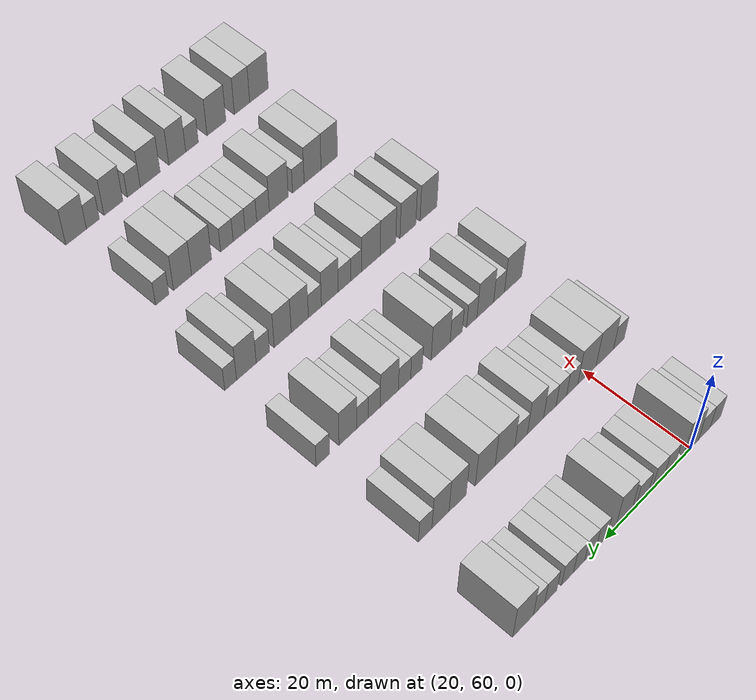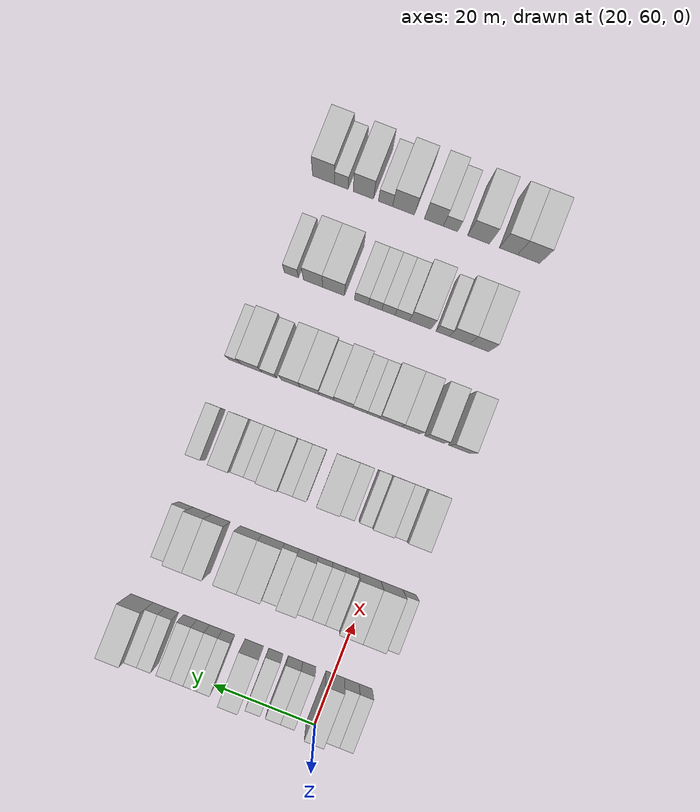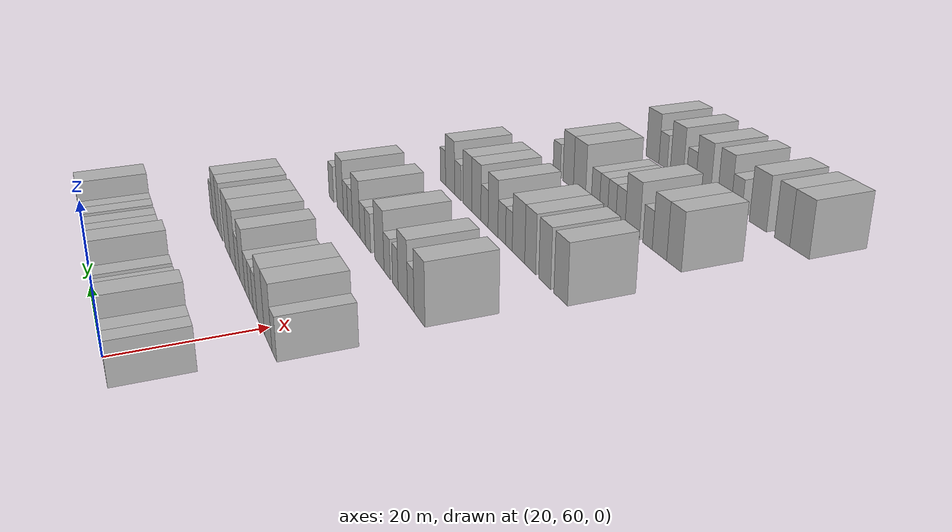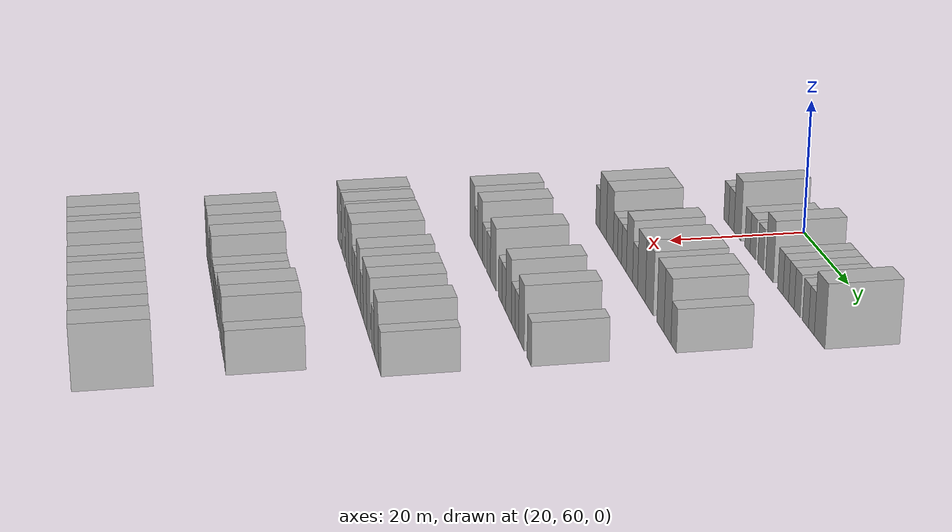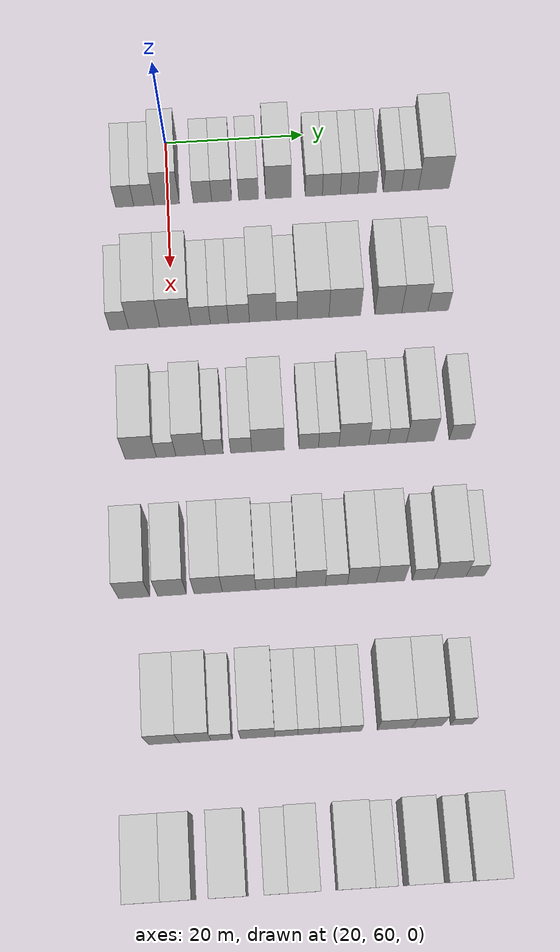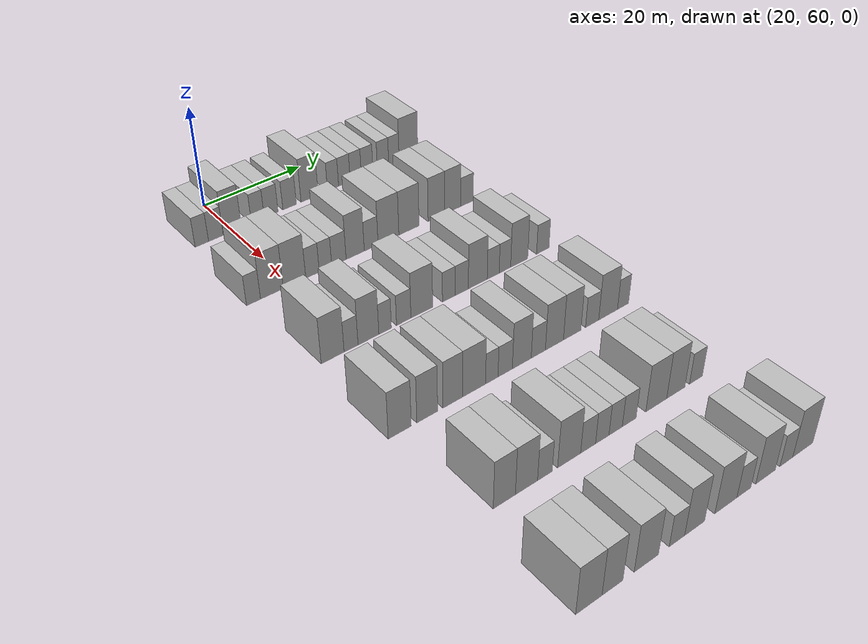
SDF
<sdf version="1.6">
 <world name="default">
  <model name="building_103">
   <static>1</static>
   <pose>25.0000 53.8488 0 0.000000 0.000000 0.000000</pose>
   <link name="link">
    <pose>0 0 3.00 0 0 0</pose>
    <collision name="collision"><geometry><box><size>10.0000 2.6082 6.0000</size></box></geometry></collision>
    <visual name="visual">
     <cast_shadows>0</cast_shadows>
     <geometry><box><size>10.0000 2.6082 6.0000</size></box></geometry>
     <material>
      <script>
       <uri>model://HANNAS_wall/materials/scripts</uri>
       <uri>model://HANNAS_wall/materials/textures</uri>
       <name>vrc/HANNAS_wall</name>
      </script>
     </material>
    </visual>
   </link>
  </model>
  <model name="building_104">
   <static>1</static>
   <pose>25.0000 56.5940 0 0.000000 0.000000 0.000000</pose>
   <link name="link">
    <pose>0 0 3.00 0 0 0</pose>
    <collision name="collision"><geometry><box><size>10.0000 2.8821 6.0000</size></box></geometry></collision>
    <visual name="visual">
     <cast_shadows>0</cast_shadows>
     <geometry><box><size>10.0000 2.8821 6.0000</size></box></geometry>
     <material>
      <script>
       <uri>model://HANNAS_wall/materials/scripts</uri>
       <uri>model://HANNAS_wall/materials/textures</uri>
       <name>vrc/HANNAS_wall</name>
      </script>
     </material>
    </visual>
   </link>
  </model>
  <model name="building_105">
   <static>1</static>
   <pose>25.0000 59.8552 0 0.000000 0.000000 0.000000</pose>
   <link name="link">
    <pose>0 0 4.50 0 0 0</pose>
    <collision name="collision"><geometry><box><size>10.0000 3.6404 9.0000</size></box></geometry></collision>
    <visual name="visual">
     <cast_shadows>0</cast_shadows>
     <geometry><box><size>10.0000 3.6404 9.0000</size></box></geometry>
     <material>
      <script>
       <uri>model://HANNAS_wall/materials/scripts</uri>
       <uri>model://HANNAS_wall/materials/textures</uri>
       <name>vrc/HANNAS_wall</name>
      </script>
     </material>
    </visual>
   </link>
  </model>
  <model name="building_106">
   <static>1</static>
   <pose>25.0000 64.9903 0 0.000000 0.000000 0.000000</pose>
   <link name="link">
    <pose>0 0 3.00 0 0 0</pose>
    <collision name="collision"><geometry><box><size>10.0000 2.6298 6.0000</size></box></geometry></collision>
    <visual name="visual">
     <cast_shadows>0</cast_shadows>
     <geometry><box><size>10.0000 2.6298 6.0000</size></box></geometry>
     <material>
      <script>
       <uri>model://HANNAS_wall/materials/scripts</uri>
       <uri>model://HANNAS_wall/materials/textures</uri>
       <name>vrc/HANNAS_wall</name>
      </script>
     </material>
    </visual>
   </link>
  </model>
  <model name="building_107">
   <static>1</static>
   <pose>25.0000 67.7396 0 0.000000 0.000000 0.000000</pose>
   <link name="link">
    <pose>0 0 3.00 0 0 0</pose>
    <collision name="collision"><geometry><box><size>10.0000 2.8688 6.0000</size></box></geometry></collision>
    <visual name="visual">
     <cast_shadows>0</cast_shadows>
     <geometry><box><size>10.0000 2.8688 6.0000</size></box></geometry>
     <material>
      <script>
       <uri>model://HANNAS_wall/materials/scripts</uri>
       <uri>model://HANNAS_wall/materials/textures</uri>
       <name>vrc/HANNAS_wall</name>
      </script>
     </material>
    </visual>
   </link>
  </model>
  <model name="building_108">
   <static>1</static>
   <pose>25.0000 71.5971 0 0.000000 0.000000 0.000000</pose>
   <link name="link">
    <pose>0 0 3.00 0 0 0</pose>
    <collision name="collision"><geometry><box><size>10.0000 2.8461 6.0000</size></box></geometry></collision>
    <visual name="visual">
     <cast_shadows>0</cast_shadows>
     <geometry><box><size>10.0000 2.8461 6.0000</size></box></geometry>
     <material>
      <script>
       <uri>model://HANNAS_wall/materials/scripts</uri>
       <uri>model://HANNAS_wall/materials/textures</uri>
       <name>vrc/HANNAS_wall</name>
      </script>
     </material>
    </visual>
   </link>
  </model>
  <model name="building_109">
   <static>1</static>
   <pose>25.0000 75.8723 0 0.000000 0.000000 0.000000</pose>
   <link name="link">
    <pose>0 0 4.50 0 0 0</pose>
    <collision name="collision"><geometry><box><size>10.0000 3.7042 9.0000</size></box></geometry></collision>
    <visual name="visual">
     <cast_shadows>0</cast_shadows>
     <geometry><box><size>10.0000 3.7042 9.0000</size></box></geometry>
     <material>
      <script>
       <uri>model://HANNAS_wall/materials/scripts</uri>
       <uri>model://HANNAS_wall/materials/textures</uri>
       <name>vrc/HANNAS_wall</name>
      </script>
     </material>
    </visual>
   </link>
  </model>
  <model name="building_110">
   <static>1</static>
   <pose>25.0000 80.9524 0 0.000000 0.000000 0.000000</pose>
   <link name="link">
    <pose>0 0 3.00 0 0 0</pose>
    <collision name="collision"><geometry><box><size>10.0000 2.4559 6.0000</size></box></geometry></collision>
    <visual name="visual">
     <cast_shadows>0</cast_shadows>
     <geometry><box><size>10.0000 2.4559 6.0000</size></box></geometry>
     <material>
      <script>
       <uri>model://HANNAS_wall/materials/scripts</uri>
       <uri>model://HANNAS_wall/materials/textures</uri>
       <name>vrc/HANNAS_wall</name>
      </script>
     </material>
    </visual>
   </link>
  </model>
  <model name="building_111">
   <static>1</static>
   <pose>25.0000 83.4660 0 0.000000 0.000000 0.000000</pose>
   <link name="link">
    <pose>0 0 3.00 0 0 0</pose>
    <collision name="collision"><geometry><box><size>10.0000 2.5713 6.0000</size></box></geometry></collision>
    <visual name="visual">
     <cast_shadows>0</cast_shadows>
     <geometry><box><size>10.0000 2.5713 6.0000</size></box></geometry>
     <material>
      <script>
       <uri>model://HANNAS_wall/materials/scripts</uri>
       <uri>model://HANNAS_wall/materials/textures</uri>
       <name>vrc/HANNAS_wall</name>
      </script>
     </material>
    </visual>
   </link>
  </model>
  <model name="building_112">
   <static>1</static>
   <pose>25.0000 86.0088 0 0.000000 0.000000 0.000000</pose>
   <link name="link">
    <pose>0 0 3.00 0 0 0</pose>
    <collision name="collision"><geometry><box><size>10.0000 2.5143 6.0000</size></box></geometry></collision>
    <visual name="visual">
     <cast_shadows>0</cast_shadows>
     <geometry><box><size>10.0000 2.5143 6.0000</size></box></geometry>
     <material>
      <script>
       <uri>model://HANNAS_wall/materials/scripts</uri>
       <uri>model://HANNAS_wall/materials/textures</uri>
       <name>vrc/HANNAS_wall</name>
      </script>
     </material>
    </visual>
   </link>
  </model>
  <model name="building_113">
   <static>1</static>
   <pose>25.0000 88.5937 0 0.000000 0.000000 0.000000</pose>
   <link name="link">
    <pose>0 0 3.00 0 0 0</pose>
    <collision name="collision"><geometry><box><size>10.0000 2.6556 6.0000</size></box></geometry></collision>
    <visual name="visual">
     <cast_shadows>0</cast_shadows>
     <geometry><box><size>10.0000 2.6556 6.0000</size></box></geometry>
     <material>
      <script>
       <uri>model://HANNAS_wall/materials/scripts</uri>
       <uri>model://HANNAS_wall/materials/textures</uri>
       <name>vrc/HANNAS_wall</name>
      </script>
     </material>
    </visual>
   </link>
  </model>
  <model name="building_114">
   <static>1</static>
   <pose>25.0000 92.2387 0 0.000000 0.000000 0.000000</pose>
   <link name="link">
    <pose>0 0 3.00 0 0 0</pose>
    <collision name="collision"><geometry><box><size>10.0000 2.6344 6.0000</size></box></geometry></collision>
    <visual name="visual">
     <cast_shadows>0</cast_shadows>
     <geometry><box><size>10.0000 2.6344 6.0000</size></box></geometry>
     <material>
      <script>
       <uri>model://HANNAS_wall/materials/scripts</uri>
       <uri>model://HANNAS_wall/materials/textures</uri>
       <name>vrc/HANNAS_wall</name>
      </script>
     </material>
    </visual>
   </link>
  </model>
  <model name="building_115">
   <static>1</static>
   <pose>25.0000 94.7714 0 0.000000 0.000000 0.000000</pose>
   <link name="link">
    <pose>0 0 3.00 0 0 0</pose>
    <collision name="collision"><geometry><box><size>10.0000 2.4309 6.0000</size></box></geometry></collision>
    <visual name="visual">
     <cast_shadows>0</cast_shadows>
     <geometry><box><size>10.0000 2.4309 6.0000</size></box></geometry>
     <material>
      <script>
       <uri>model://HANNAS_wall/materials/scripts</uri>
       <uri>model://HANNAS_wall/materials/textures</uri>
       <name>vrc/HANNAS_wall</name>
      </script>
     </material>
    </visual>
   </link>
  </model>
  <model name="building_116">
   <static>1</static>
   <pose>25.0000 98.2021 0 0.000000 0.000000 0.000000</pose>
   <link name="link">
    <pose>0 0 4.50 0 0 0</pose>
    <collision name="collision"><geometry><box><size>10.0000 4.4305 9.0000</size></box></geometry></collision>
    <visual name="visual">
     <cast_shadows>0</cast_shadows>
     <geometry><box><size>10.0000 4.4305 9.0000</size></box></geometry>
     <material>
      <script>
       <uri>model://HANNAS_wall/materials/scripts</uri>
       <uri>model://HANNAS_wall/materials/textures</uri>
       <name>vrc/HANNAS_wall</name>
      </script>
     </material>
    </visual>
   </link>
  </model>
  <model name="building_269">
   <static>1</static>
   <pose>44.0000 52.5776 0 0.000000 0.000000 0.000000</pose>
   <link name="link">
    <pose>0 0 3.00 0 0 0</pose>
    <collision name="collision"><geometry><box><size>10.0000 2.6210 6.0000</size></box></geometry></collision>
    <visual name="visual">
     <cast_shadows>0</cast_shadows>
     <geometry><box><size>10.0000 2.6210 6.0000</size></box></geometry>
     <material>
      <script>
       <uri>model://HANNAS_wall/materials/scripts</uri>
       <uri>model://HANNAS_wall/materials/textures</uri>
       <name>vrc/HANNAS_wall</name>
      </script>
     </material>
    </visual>
   </link>
  </model>
  <model name="building_270">
   <static>1</static>
   <pose>44.0000 56.0456 0 0.000000 0.000000 0.000000</pose>
   <link name="link">
    <pose>0 0 4.50 0 0 0</pose>
    <collision name="collision"><geometry><box><size>10.0000 4.3150 9.0000</size></box></geometry></collision>
    <visual name="visual">
     <cast_shadows>0</cast_shadows>
     <geometry><box><size>10.0000 4.3150 9.0000</size></box></geometry>
     <material>
      <script>
       <uri>model://HANNAS_wall/materials/scripts</uri>
       <uri>model://HANNAS_wall/materials/textures</uri>
       <name>vrc/HANNAS_wall</name>
      </script>
     </material>
    </visual>
   </link>
  </model>
  <model name="building_271">
   <static>1</static>
   <pose>44.0000 60.3945 0 0.000000 0.000000 0.000000</pose>
   <link name="link">
    <pose>0 0 4.50 0 0 0</pose>
    <collision name="collision"><geometry><box><size>10.0000 4.3827 9.0000</size></box></geometry></collision>
    <visual name="visual">
     <cast_shadows>0</cast_shadows>
     <geometry><box><size>10.0000 4.3827 9.0000</size></box></geometry>
     <material>
      <script>
       <uri>model://HANNAS_wall/materials/scripts</uri>
       <uri>model://HANNAS_wall/materials/textures</uri>
       <name>vrc/HANNAS_wall</name>
      </script>
     </material>
    </visual>
   </link>
  </model>
  <model name="building_272">
   <static>1</static>
   <pose>44.0000 63.9227 0 0.000000 0.000000 0.000000</pose>
   <link name="link">
    <pose>0 0 3.00 0 0 0</pose>
    <collision name="collision"><geometry><box><size>10.0000 2.6737 6.0000</size></box></geometry></collision>
    <visual name="visual">
     <cast_shadows>0</cast_shadows>
     <geometry><box><size>10.0000 2.6737 6.0000</size></box></geometry>
     <material>
      <script>
       <uri>model://HANNAS_wall/materials/scripts</uri>
       <uri>model://HANNAS_wall/materials/textures</uri>
       <name>vrc/HANNAS_wall</name>
      </script>
     </material>
    </visual>
   </link>
  </model>
  <model name="building_273">
   <static>1</static>
   <pose>44.0000 66.5073 0 0.000000 0.000000 0.000000</pose>
   <link name="link">
    <pose>0 0 3.00 0 0 0</pose>
    <collision name="collision"><geometry><box><size>10.0000 2.4953 6.0000</size></box></geometry></collision>
    <visual name="visual">
     <cast_shadows>0</cast_shadows>
     <geometry><box><size>10.0000 2.4953 6.0000</size></box></geometry>
     <material>
      <script>
       <uri>model://HANNAS_wall/materials/scripts</uri>
       <uri>model://HANNAS_wall/materials/textures</uri>
       <name>vrc/HANNAS_wall</name>
      </script>
     </material>
    </visual>
   </link>
  </model>
  <model name="building_274">
   <static>1</static>
   <pose>44.0000 69.2160 0 0.000000 0.000000 0.000000</pose>
   <link name="link">
    <pose>0 0 3.00 0 0 0</pose>
    <collision name="collision"><geometry><box><size>10.0000 2.9222 6.0000</size></box></geometry></collision>
    <visual name="visual">
     <cast_shadows>0</cast_shadows>
     <geometry><box><size>10.0000 2.9222 6.0000</size></box></geometry>
     <material>
      <script>
       <uri>model://HANNAS_wall/materials/scripts</uri>
       <uri>model://HANNAS_wall/materials/textures</uri>
       <name>vrc/HANNAS_wall</name>
      </script>
     </material>
    </visual>
   </link>
  </model>
  <model name="building_275">
   <static>1</static>
   <pose>44.0000 72.5506 0 0.000000 0.000000 0.000000</pose>
   <link name="link">
    <pose>0 0 4.50 0 0 0</pose>
    <collision name="collision"><geometry><box><size>10.0000 3.7469 9.0000</size></box></geometry></collision>
    <visual name="visual">
     <cast_shadows>0</cast_shadows>
     <geometry><box><size>10.0000 3.7469 9.0000</size></box></geometry>
     <material>
      <script>
       <uri>model://HANNAS_wall/materials/scripts</uri>
       <uri>model://HANNAS_wall/materials/textures</uri>
       <name>vrc/HANNAS_wall</name>
      </script>
     </material>
    </visual>
   </link>
  </model>
  <model name="building_276">
   <static>1</static>
   <pose>44.0000 75.8721 0 0.000000 0.000000 0.000000</pose>
   <link name="link">
    <pose>0 0 3.00 0 0 0</pose>
    <collision name="collision"><geometry><box><size>10.0000 2.8960 6.0000</size></box></geometry></collision>
    <visual name="visual">
     <cast_shadows>0</cast_shadows>
     <geometry><box><size>10.0000 2.8960 6.0000</size></box></geometry>
     <material>
      <script>
       <uri>model://HANNAS_wall/materials/scripts</uri>
       <uri>model://HANNAS_wall/materials/textures</uri>
       <name>vrc/HANNAS_wall</name>
      </script>
     </material>
    </visual>
   </link>
  </model>
  <model name="building_277">
   <static>1</static>
   <pose>44.0000 79.5388 0 0.000000 0.000000 0.000000</pose>
   <link name="link">
    <pose>0 0 4.50 0 0 0</pose>
    <collision name="collision"><geometry><box><size>10.0000 4.4375 9.0000</size></box></geometry></collision>
    <visual name="visual">
     <cast_shadows>0</cast_shadows>
     <geometry><box><size>10.0000 4.4375 9.0000</size></box></geometry>
     <material>
      <script>
       <uri>model://HANNAS_wall/materials/scripts</uri>
       <uri>model://HANNAS_wall/materials/textures</uri>
       <name>vrc/HANNAS_wall</name>
      </script>
     </material>
    </visual>
   </link>
  </model>
  <model name="building_278">
   <static>1</static>
   <pose>44.0000 83.9598 0 0.000000 0.000000 0.000000</pose>
   <link name="link">
    <pose>0 0 4.50 0 0 0</pose>
    <collision name="collision"><geometry><box><size>10.0000 4.4044 9.0000</size></box></geometry></collision>
    <visual name="visual">
     <cast_shadows>0</cast_shadows>
     <geometry><box><size>10.0000 4.4044 9.0000</size></box></geometry>
     <material>
      <script>
       <uri>model://HANNAS_wall/materials/scripts</uri>
       <uri>model://HANNAS_wall/materials/textures</uri>
       <name>vrc/HANNAS_wall</name>
      </script>
     </material>
    </visual>
   </link>
  </model>
  <model name="building_279">
   <static>1</static>
   <pose>44.0000 90.0341 0 0.000000 0.000000 0.000000</pose>
   <link name="link">
    <pose>0 0 4.50 0 0 0</pose>
    <collision name="collision"><geometry><box><size>10.0000 3.7443 9.0000</size></box></geometry></collision>
    <visual name="visual">
     <cast_shadows>0</cast_shadows>
     <geometry><box><size>10.0000 3.7443 9.0000</size></box></geometry>
     <material>
      <script>
       <uri>model://HANNAS_wall/materials/scripts</uri>
       <uri>model://HANNAS_wall/materials/textures</uri>
       <name>vrc/HANNAS_wall</name>
      </script>
     </material>
    </visual>
   </link>
  </model>
  <model name="building_280">
   <static>1</static>
   <pose>44.0000 93.7412 0 0.000000 0.000000 0.000000</pose>
   <link name="link">
    <pose>0 0 4.50 0 0 0</pose>
    <collision name="collision"><geometry><box><size>10.0000 3.6699 9.0000</size></box></geometry></collision>
    <visual name="visual">
     <cast_shadows>0</cast_shadows>
     <geometry><box><size>10.0000 3.6699 9.0000</size></box></geometry>
     <material>
      <script>
       <uri>model://HANNAS_wall/materials/scripts</uri>
       <uri>model://HANNAS_wall/materials/textures</uri>
       <name>vrc/HANNAS_wall</name>
      </script>
     </material>
    </visual>
   </link>
  </model>
  <model name="building_281">
   <static>1</static>
   <pose>44.0000 97.0076 0 0.000000 0.000000 0.000000</pose>
   <link name="link">
    <pose>0 0 3.00 0 0 0</pose>
    <collision name="collision"><geometry><box><size>10.0000 2.8629 6.0000</size></box></geometry></collision>
    <visual name="visual">
     <cast_shadows>0</cast_shadows>
     <geometry><box><size>10.0000 2.8629 6.0000</size></box></geometry>
     <material>
      <script>
       <uri>model://HANNAS_wall/materials/scripts</uri>
       <uri>model://HANNAS_wall/materials/textures</uri>
       <name>vrc/HANNAS_wall</name>
      </script>
     </material>
    </visual>
   </link>
  </model>
  <model name="building_440">
   <static>1</static>
   <pose>63.0000 55.0257 0 0.000000 0.000000 0.000000</pose>
   <link name="link">
    <pose>0 0 4.50 0 0 0</pose>
    <collision name="collision"><geometry><box><size>10.0000 4.2123 9.0000</size></box></geometry></collision>
    <visual name="visual">
     <cast_shadows>0</cast_shadows>
     <geometry><box><size>10.0000 4.2123 9.0000</size></box></geometry>
     <material>
      <script>
       <uri>model://HANNAS_wall/materials/scripts</uri>
       <uri>model://HANNAS_wall/materials/textures</uri>
       <name>vrc/HANNAS_wall</name>
      </script>
     </material>
    </visual>
   </link>
  </model>
  <model name="building_441">
   <static>1</static>
   <pose>63.0000 58.4349 0 0.000000 0.000000 0.000000</pose>
   <link name="link">
    <pose>0 0 3.00 0 0 0</pose>
    <collision name="collision"><geometry><box><size>10.0000 2.6060 6.0000</size></box></geometry></collision>
    <visual name="visual">
     <cast_shadows>0</cast_shadows>
     <geometry><box><size>10.0000 2.6060 6.0000</size></box></geometry>
     <material>
      <script>
       <uri>model://HANNAS_wall/materials/scripts</uri>
       <uri>model://HANNAS_wall/materials/textures</uri>
       <name>vrc/HANNAS_wall</name>
      </script>
     </material>
    </visual>
   </link>
  </model>
  <model name="building_442">
   <static>1</static>
   <pose>63.0000 61.7177 0 0.000000 0.000000 0.000000</pose>
   <link name="link">
    <pose>0 0 4.50 0 0 0</pose>
    <collision name="collision"><geometry><box><size>10.0000 3.9595 9.0000</size></box></geometry></collision>
    <visual name="visual">
     <cast_shadows>0</cast_shadows>
     <geometry><box><size>10.0000 3.9595 9.0000</size></box></geometry>
     <material>
      <script>
       <uri>model://HANNAS_wall/materials/scripts</uri>
       <uri>model://HANNAS_wall/materials/textures</uri>
       <name>vrc/HANNAS_wall</name>
      </script>
     </material>
    </visual>
   </link>
  </model>
  <model name="building_443">
   <static>1</static>
   <pose>63.0000 64.9080 0 0.000000 0.000000 0.000000</pose>
   <link name="link">
    <pose>0 0 3.00 0 0 0</pose>
    <collision name="collision"><geometry><box><size>10.0000 2.4212 6.0000</size></box></geometry></collision>
    <visual name="visual">
     <cast_shadows>0</cast_shadows>
     <geometry><box><size>10.0000 2.4212 6.0000</size></box></geometry>
     <material>
      <script>
       <uri>model://HANNAS_wall/materials/scripts</uri>
       <uri>model://HANNAS_wall/materials/textures</uri>
       <name>vrc/HANNAS_wall</name>
      </script>
     </material>
    </visual>
   </link>
  </model>
  <model name="building_444">
   <static>1</static>
   <pose>63.0000 68.5434 0 0.000000 0.000000 0.000000</pose>
   <link name="link">
    <pose>0 0 3.00 0 0 0</pose>
    <collision name="collision"><geometry><box><size>10.0000 2.8496 6.0000</size></box></geometry></collision>
    <visual name="visual">
     <cast_shadows>0</cast_shadows>
     <geometry><box><size>10.0000 2.8496 6.0000</size></box></geometry>
     <material>
      <script>
       <uri>model://HANNAS_wall/materials/scripts</uri>
       <uri>model://HANNAS_wall/materials/textures</uri>
       <name>vrc/HANNAS_wall</name>
      </script>
     </material>
    </visual>
   </link>
  </model>
  <model name="building_445">
   <static>1</static>
   <pose>63.0000 72.1521 0 0.000000 0.000000 0.000000</pose>
   <link name="link">
    <pose>0 0 4.50 0 0 0</pose>
    <collision name="collision"><geometry><box><size>10.0000 4.3678 9.0000</size></box></geometry></collision>
    <visual name="visual">
     <cast_shadows>0</cast_shadows>
     <geometry><box><size>10.0000 4.3678 9.0000</size></box></geometry>
     <material>
      <script>
       <uri>model://HANNAS_wall/materials/scripts</uri>
       <uri>model://HANNAS_wall/materials/textures</uri>
       <name>vrc/HANNAS_wall</name>
      </script>
     </material>
    </visual>
   </link>
  </model>
  <model name="building_446">
   <static>1</static>
   <pose>63.0000 77.6573 0 0.000000 0.000000 0.000000</pose>
   <link name="link">
    <pose>0 0 3.00 0 0 0</pose>
    <collision name="collision"><geometry><box><size>10.0000 2.6425 6.0000</size></box></geometry></collision>
    <visual name="visual">
     <cast_shadows>0</cast_shadows>
     <geometry><box><size>10.0000 2.6425 6.0000</size></box></geometry>
     <material>
      <script>
       <uri>model://HANNAS_wall/materials/scripts</uri>
       <uri>model://HANNAS_wall/materials/textures</uri>
       <name>vrc/HANNAS_wall</name>
      </script>
     </material>
    </visual>
   </link>
  </model>
  <model name="building_447">
   <static>1</static>
   <pose>63.0000 80.3554 0 0.000000 0.000000 0.000000</pose>
   <link name="link">
    <pose>0 0 3.00 0 0 0</pose>
    <collision name="collision"><geometry><box><size>10.0000 2.7536 6.0000</size></box></geometry></collision>
    <visual name="visual">
     <cast_shadows>0</cast_shadows>
     <geometry><box><size>10.0000 2.7536 6.0000</size></box></geometry>
     <material>
      <script>
       <uri>model://HANNAS_wall/materials/scripts</uri>
       <uri>model://HANNAS_wall/materials/textures</uri>
       <name>vrc/HANNAS_wall</name>
      </script>
     </material>
    </visual>
   </link>
  </model>
  <model name="building_448">
   <static>1</static>
   <pose>63.0000 83.7452 0 0.000000 0.000000 0.000000</pose>
   <link name="link">
    <pose>0 0 4.50 0 0 0</pose>
    <collision name="collision"><geometry><box><size>10.0000 4.0261 9.0000</size></box></geometry></collision>
    <visual name="visual">
     <cast_shadows>0</cast_shadows>
     <geometry><box><size>10.0000 4.0261 9.0000</size></box></geometry>
     <material>
      <script>
       <uri>model://HANNAS_wall/materials/scripts</uri>
       <uri>model://HANNAS_wall/materials/textures</uri>
       <name>vrc/HANNAS_wall</name>
      </script>
     </material>
    </visual>
   </link>
  </model>
  <model name="building_449">
   <static>1</static>
   <pose>63.0000 87.0568 0 0.000000 0.000000 0.000000</pose>
   <link name="link">
    <pose>0 0 3.00 0 0 0</pose>
    <collision name="collision"><geometry><box><size>10.0000 2.5970 6.0000</size></box></geometry></collision>
    <visual name="visual">
     <cast_shadows>0</cast_shadows>
     <geometry><box><size>10.0000 2.5970 6.0000</size></box></geometry>
     <material>
      <script>
       <uri>model://HANNAS_wall/materials/scripts</uri>
       <uri>model://HANNAS_wall/materials/textures</uri>
       <name>vrc/HANNAS_wall</name>
      </script>
     </material>
    </visual>
   </link>
  </model>
  <model name="building_450">
   <static>1</static>
   <pose>63.0000 89.6159 0 0.000000 0.000000 0.000000</pose>
   <link name="link">
    <pose>0 0 3.00 0 0 0</pose>
    <collision name="collision"><geometry><box><size>10.0000 2.5211 6.0000</size></box></geometry></collision>
    <visual name="visual">
     <cast_shadows>0</cast_shadows>
     <geometry><box><size>10.0000 2.5211 6.0000</size></box></geometry>
     <material>
      <script>
       <uri>model://HANNAS_wall/materials/scripts</uri>
       <uri>model://HANNAS_wall/materials/textures</uri>
       <name>vrc/HANNAS_wall</name>
      </script>
     </material>
    </visual>
   </link>
  </model>
  <model name="building_451">
   <static>1</static>
   <pose>63.0000 92.7737 0 0.000000 0.000000 0.000000</pose>
   <link name="link">
    <pose>0 0 4.50 0 0 0</pose>
    <collision name="collision"><geometry><box><size>10.0000 3.7946 9.0000</size></box></geometry></collision>
    <visual name="visual">
     <cast_shadows>0</cast_shadows>
     <geometry><box><size>10.0000 3.7946 9.0000</size></box></geometry>
     <material>
      <script>
       <uri>model://HANNAS_wall/materials/scripts</uri>
       <uri>model://HANNAS_wall/materials/textures</uri>
       <name>vrc/HANNAS_wall</name>
      </script>
     </material>
    </visual>
   </link>
  </model>
  <model name="building_452">
   <static>1</static>
   <pose>63.0000 98.0937 0 0.000000 0.000000 0.000000</pose>
   <link name="link">
    <pose>0 0 3.00 0 0 0</pose>
    <collision name="collision"><geometry><box><size>10.0000 2.8454 6.0000</size></box></geometry></collision>
    <visual name="visual">
     <cast_shadows>0</cast_shadows>
     <geometry><box><size>10.0000 2.8454 6.0000</size></box></geometry>
     <material>
      <script>
       <uri>model://HANNAS_wall/materials/scripts</uri>
       <uri>model://HANNAS_wall/materials/textures</uri>
       <name>vrc/HANNAS_wall</name>
      </script>
     </material>
    </visual>
   </link>
  </model>
  <model name="building_617">
   <static>1</static>
   <pose>82.0000 53.5790 0 0.000000 0.000000 0.000000</pose>
   <link name="link">
    <pose>0 0 4.50 0 0 0</pose>
    <collision name="collision"><geometry><box><size>10.0000 4.0742 9.0000</size></box></geometry></collision>
    <visual name="visual">
     <cast_shadows>0</cast_shadows>
     <geometry><box><size>10.0000 4.0742 9.0000</size></box></geometry>
     <material>
      <script>
       <uri>model://HANNAS_wall/materials/scripts</uri>
       <uri>model://HANNAS_wall/materials/textures</uri>
       <name>vrc/HANNAS_wall</name>
      </script>
     </material>
    </visual>
   </link>
  </model>
  <model name="building_618">
   <static>1</static>
   <pose>82.0000 58.5087 0 0.000000 0.000000 0.000000</pose>
   <link name="link">
    <pose>0 0 4.50 0 0 0</pose>
    <collision name="collision"><geometry><box><size>10.0000 3.7851 9.0000</size></box></geometry></collision>
    <visual name="visual">
     <cast_shadows>0</cast_shadows>
     <geometry><box><size>10.0000 3.7851 9.0000</size></box></geometry>
     <material>
      <script>
       <uri>model://HANNAS_wall/materials/scripts</uri>
       <uri>model://HANNAS_wall/materials/textures</uri>
       <name>vrc/HANNAS_wall</name>
      </script>
     </material>
    </visual>
   </link>
  </model>
  <model name="building_619">
   <static>1</static>
   <pose>82.0000 63.2399 0 0.000000 0.000000 0.000000</pose>
   <link name="link">
    <pose>0 0 4.50 0 0 0</pose>
    <collision name="collision"><geometry><box><size>10.0000 3.6775 9.0000</size></box></geometry></collision>
    <visual name="visual">
     <cast_shadows>0</cast_shadows>
     <geometry><box><size>10.0000 3.6775 9.0000</size></box></geometry>
     <material>
      <script>
       <uri>model://HANNAS_wall/materials/scripts</uri>
       <uri>model://HANNAS_wall/materials/textures</uri>
       <name>vrc/HANNAS_wall</name>
      </script>
     </material>
    </visual>
   </link>
  </model>
  <model name="building_620">
   <static>1</static>
   <pose>82.0000 67.2622 0 0.000000 0.000000 0.000000</pose>
   <link name="link">
    <pose>0 0 4.50 0 0 0</pose>
    <collision name="collision"><geometry><box><size>10.0000 4.3670 9.0000</size></box></geometry></collision>
    <visual name="visual">
     <cast_shadows>0</cast_shadows>
     <geometry><box><size>10.0000 4.3670 9.0000</size></box></geometry>
     <material>
      <script>
       <uri>model://HANNAS_wall/materials/scripts</uri>
       <uri>model://HANNAS_wall/materials/textures</uri>
       <name>vrc/HANNAS_wall</name>
      </script>
     </material>
    </visual>
   </link>
  </model>
  <model name="building_621">
   <static>1</static>
   <pose>82.0000 70.6679 0 0.000000 0.000000 0.000000</pose>
   <link name="link">
    <pose>0 0 3.00 0 0 0</pose>
    <collision name="collision"><geometry><box><size>10.0000 2.4444 6.0000</size></box></geometry></collision>
    <visual name="visual">
     <cast_shadows>0</cast_shadows>
     <geometry><box><size>10.0000 2.4444 6.0000</size></box></geometry>
     <material>
      <script>
       <uri>model://HANNAS_wall/materials/scripts</uri>
       <uri>model://HANNAS_wall/materials/textures</uri>
       <name>vrc/HANNAS_wall</name>
      </script>
     </material>
    </visual>
   </link>
  </model>
  <model name="building_622">
   <static>1</static>
   <pose>82.0000 73.3102 0 0.000000 0.000000 0.000000</pose>
   <link name="link">
    <pose>0 0 3.00 0 0 0</pose>
    <collision name="collision"><geometry><box><size>10.0000 2.8403 6.0000</size></box></geometry></collision>
    <visual name="visual">
     <cast_shadows>0</cast_shadows>
     <geometry><box><size>10.0000 2.8403 6.0000</size></box></geometry>
     <material>
      <script>
       <uri>model://HANNAS_wall/materials/scripts</uri>
       <uri>model://HANNAS_wall/materials/textures</uri>
       <name>vrc/HANNAS_wall</name>
      </script>
     </material>
    </visual>
   </link>
  </model>
  <model name="building_623">
   <static>1</static>
   <pose>82.0000 76.6312 0 0.000000 0.000000 0.000000</pose>
   <link name="link">
    <pose>0 0 4.50 0 0 0</pose>
    <collision name="collision"><geometry><box><size>10.0000 3.8017 9.0000</size></box></geometry></collision>
    <visual name="visual">
     <cast_shadows>0</cast_shadows>
     <geometry><box><size>10.0000 3.8017 9.0000</size></box></geometry>
     <material>
      <script>
       <uri>model://HANNAS_wall/materials/scripts</uri>
       <uri>model://HANNAS_wall/materials/textures</uri>
       <name>vrc/HANNAS_wall</name>
      </script>
     </material>
    </visual>
   </link>
  </model>
  <model name="building_624">
   <static>1</static>
   <pose>82.0000 79.9833 0 0.000000 0.000000 0.000000</pose>
   <link name="link">
    <pose>0 0 3.00 0 0 0</pose>
    <collision name="collision"><geometry><box><size>10.0000 2.9024 6.0000</size></box></geometry></collision>
    <visual name="visual">
     <cast_shadows>0</cast_shadows>
     <geometry><box><size>10.0000 2.9024 6.0000</size></box></geometry>
     <material>
      <script>
       <uri>model://HANNAS_wall/materials/scripts</uri>
       <uri>model://HANNAS_wall/materials/textures</uri>
       <name>vrc/HANNAS_wall</name>
      </script>
     </material>
    </visual>
   </link>
  </model>
  <model name="building_625">
   <static>1</static>
   <pose>82.0000 83.3240 0 0.000000 0.000000 0.000000</pose>
   <link name="link">
    <pose>0 0 4.50 0 0 0</pose>
    <collision name="collision"><geometry><box><size>10.0000 3.7791 9.0000</size></box></geometry></collision>
    <visual name="visual">
     <cast_shadows>0</cast_shadows>
     <geometry><box><size>10.0000 3.7791 9.0000</size></box></geometry>
     <material>
      <script>
       <uri>model://HANNAS_wall/materials/scripts</uri>
       <uri>model://HANNAS_wall/materials/textures</uri>
       <name>vrc/HANNAS_wall</name>
      </script>
     </material>
    </visual>
   </link>
  </model>
  <model name="building_626">
   <static>1</static>
   <pose>82.0000 87.0717 0 0.000000 0.000000 0.000000</pose>
   <link name="link">
    <pose>0 0 4.50 0 0 0</pose>
    <collision name="collision"><geometry><box><size>10.0000 3.7163 9.0000</size></box></geometry></collision>
    <visual name="visual">
     <cast_shadows>0</cast_shadows>
     <geometry><box><size>10.0000 3.7163 9.0000</size></box></geometry>
     <material>
      <script>
       <uri>model://HANNAS_wall/materials/scripts</uri>
       <uri>model://HANNAS_wall/materials/textures</uri>
       <name>vrc/HANNAS_wall</name>
      </script>
     </material>
    </visual>
   </link>
  </model>
  <model name="building_627">
   <static>1</static>
   <pose>82.0000 91.3712 0 0.000000 0.000000 0.000000</pose>
   <link name="link">
    <pose>0 0 3.00 0 0 0</pose>
    <collision name="collision"><geometry><box><size>10.0000 2.8827 6.0000</size></box></geometry></collision>
    <visual name="visual">
     <cast_shadows>0</cast_shadows>
     <geometry><box><size>10.0000 2.8827 6.0000</size></box></geometry>
     <material>
      <script>
       <uri>model://HANNAS_wall/materials/scripts</uri>
       <uri>model://HANNAS_wall/materials/textures</uri>
       <name>vrc/HANNAS_wall</name>
      </script>
     </material>
    </visual>
   </link>
  </model>
  <model name="building_628">
   <static>1</static>
   <pose>82.0000 94.8962 0 0.000000 0.000000 0.000000</pose>
   <link name="link">
    <pose>0 0 4.50 0 0 0</pose>
    <collision name="collision"><geometry><box><size>10.0000 4.1673 9.0000</size></box></geometry></collision>
    <visual name="visual">
     <cast_shadows>0</cast_shadows>
     <geometry><box><size>10.0000 4.1673 9.0000</size></box></geometry>
     <material>
      <script>
       <uri>model://HANNAS_wall/materials/scripts</uri>
       <uri>model://HANNAS_wall/materials/textures</uri>
       <name>vrc/HANNAS_wall</name>
      </script>
     </material>
    </visual>
   </link>
  </model>
  <model name="building_629">
   <static>1</static>
   <pose>82.0000 98.2232 0 0.000000 0.000000 0.000000</pose>
   <link name="link">
    <pose>0 0 3.00 0 0 0</pose>
    <collision name="collision"><geometry><box><size>10.0000 2.4867 6.0000</size></box></geometry></collision>
    <visual name="visual">
     <cast_shadows>0</cast_shadows>
     <geometry><box><size>10.0000 2.4867 6.0000</size></box></geometry>
     <material>
      <script>
       <uri>model://HANNAS_wall/materials/scripts</uri>
       <uri>model://HANNAS_wall/materials/textures</uri>
       <name>vrc/HANNAS_wall</name>
      </script>
     </material>
    </visual>
   </link>
  </model>
  <model name="building_792">
   <static>1</static>
   <pose>101.0000 56.8065 0 0.000000 0.000000 0.000000</pose>
   <link name="link">
    <pose>0 0 4.50 0 0 0</pose>
    <collision name="collision"><geometry><box><size>10.0000 3.9000 9.0000</size></box></geometry></collision>
    <visual name="visual">
     <cast_shadows>0</cast_shadows>
     <geometry><box><size>10.0000 3.9000 9.0000</size></box></geometry>
     <material>
      <script>
       <uri>model://HANNAS_wall/materials/scripts</uri>
       <uri>model://HANNAS_wall/materials/textures</uri>
       <name>vrc/HANNAS_wall</name>
      </script>
     </material>
    </visual>
   </link>
  </model>
  <model name="building_793">
   <static>1</static>
   <pose>101.0000 60.7530 0 0.000000 0.000000 0.000000</pose>
   <link name="link">
    <pose>0 0 4.50 0 0 0</pose>
    <collision name="collision"><geometry><box><size>10.0000 3.9930 9.0000</size></box></geometry></collision>
    <visual name="visual">
     <cast_shadows>0</cast_shadows>
     <geometry><box><size>10.0000 3.9930 9.0000</size></box></geometry>
     <material>
      <script>
       <uri>model://HANNAS_wall/materials/scripts</uri>
       <uri>model://HANNAS_wall/materials/textures</uri>
       <name>vrc/HANNAS_wall</name>
      </script>
     </material>
    </visual>
   </link>
  </model>
  <model name="building_794">
   <static>1</static>
   <pose>101.0000 64.1003 0 0.000000 0.000000 0.000000</pose>
   <link name="link">
    <pose>0 0 3.00 0 0 0</pose>
    <collision name="collision"><geometry><box><size>10.0000 2.7016 6.0000</size></box></geometry></collision>
    <visual name="visual">
     <cast_shadows>0</cast_shadows>
     <geometry><box><size>10.0000 2.7016 6.0000</size></box></geometry>
     <material>
      <script>
       <uri>model://HANNAS_wall/materials/scripts</uri>
       <uri>model://HANNAS_wall/materials/textures</uri>
       <name>vrc/HANNAS_wall</name>
      </script>
     </material>
    </visual>
   </link>
  </model>
  <model name="building_795">
   <static>1</static>
   <pose>101.0000 68.6294 0 0.000000 0.000000 0.000000</pose>
   <link name="link">
    <pose>0 0 4.50 0 0 0</pose>
    <collision name="collision"><geometry><box><size>10.0000 4.3567 9.0000</size></box></geometry></collision>
    <visual name="visual">
     <cast_shadows>0</cast_shadows>
     <geometry><box><size>10.0000 4.3567 9.0000</size></box></geometry>
     <material>
      <script>
       <uri>model://HANNAS_wall/materials/scripts</uri>
       <uri>model://HANNAS_wall/materials/textures</uri>
       <name>vrc/HANNAS_wall</name>
      </script>
     </material>
    </visual>
   </link>
  </model>
  <model name="building_796">
   <static>1</static>
   <pose>101.0000 72.2483 0 0.000000 0.000000 0.000000</pose>
   <link name="link">
    <pose>0 0 3.00 0 0 0</pose>
    <collision name="collision"><geometry><box><size>10.0000 2.8810 6.0000</size></box></geometry></collision>
    <visual name="visual">
     <cast_shadows>0</cast_shadows>
     <geometry><box><size>10.0000 2.8810 6.0000</size></box></geometry>
     <material>
      <script>
       <uri>model://HANNAS_wall/materials/scripts</uri>
       <uri>model://HANNAS_wall/materials/textures</uri>
       <name>vrc/HANNAS_wall</name>
      </script>
     </material>
    </visual>
   </link>
  </model>
  <model name="building_797">
   <static>1</static>
   <pose>101.0000 75.0071 0 0.000000 0.000000 0.000000</pose>
   <link name="link">
    <pose>0 0 3.00 0 0 0</pose>
    <collision name="collision"><geometry><box><size>10.0000 2.6368 6.0000</size></box></geometry></collision>
    <visual name="visual">
     <cast_shadows>0</cast_shadows>
     <geometry><box><size>10.0000 2.6368 6.0000</size></box></geometry>
     <material>
      <script>
       <uri>model://HANNAS_wall/materials/scripts</uri>
       <uri>model://HANNAS_wall/materials/textures</uri>
       <name>vrc/HANNAS_wall</name>
      </script>
     </material>
    </visual>
   </link>
  </model>
  <model name="building_798">
   <static>1</static>
   <pose>101.0000 77.6536 0 0.000000 0.000000 0.000000</pose>
   <link name="link">
    <pose>0 0 3.00 0 0 0</pose>
    <collision name="collision"><geometry><box><size>10.0000 2.6562 6.0000</size></box></geometry></collision>
    <visual name="visual">
     <cast_shadows>0</cast_shadows>
     <geometry><box><size>10.0000 2.6562 6.0000</size></box></geometry>
     <material>
      <script>
       <uri>model://HANNAS_wall/materials/scripts</uri>
       <uri>model://HANNAS_wall/materials/textures</uri>
       <name>vrc/HANNAS_wall</name>
      </script>
     </material>
    </visual>
   </link>
  </model>
  <model name="building_799">
   <static>1</static>
   <pose>101.0000 80.3815 0 0.000000 0.000000 0.000000</pose>
   <link name="link">
    <pose>0 0 3.00 0 0 0</pose>
    <collision name="collision"><geometry><box><size>10.0000 2.7995 6.0000</size></box></geometry></collision>
    <visual name="visual">
     <cast_shadows>0</cast_shadows>
     <geometry><box><size>10.0000 2.7995 6.0000</size></box></geometry>
     <material>
      <script>
       <uri>model://HANNAS_wall/materials/scripts</uri>
       <uri>model://HANNAS_wall/materials/textures</uri>
       <name>vrc/HANNAS_wall</name>
      </script>
     </material>
    </visual>
   </link>
  </model>
  <model name="building_800">
   <static>1</static>
   <pose>101.0000 85.9625 0 0.000000 0.000000 0.000000</pose>
   <link name="link">
    <pose>0 0 4.50 0 0 0</pose>
    <collision name="collision"><geometry><box><size>10.0000 4.3625 9.0000</size></box></geometry></collision>
    <visual name="visual">
     <cast_shadows>0</cast_shadows>
     <geometry><box><size>10.0000 4.3625 9.0000</size></box></geometry>
     <material>
      <script>
       <uri>model://HANNAS_wall/materials/scripts</uri>
       <uri>model://HANNAS_wall/materials/textures</uri>
       <name>vrc/HANNAS_wall</name>
      </script>
     </material>
    </visual>
   </link>
  </model>
  <model name="building_801">
   <static>1</static>
   <pose>101.0000 90.0918 0 0.000000 0.000000 0.000000</pose>
   <link name="link">
    <pose>0 0 4.50 0 0 0</pose>
    <collision name="collision"><geometry><box><size>10.0000 3.8961 9.0000</size></box></geometry></collision>
    <visual name="visual">
     <cast_shadows>0</cast_shadows>
     <geometry><box><size>10.0000 3.8961 9.0000</size></box></geometry>
     <material>
      <script>
       <uri>model://HANNAS_wall/materials/scripts</uri>
       <uri>model://HANNAS_wall/materials/textures</uri>
       <name>vrc/HANNAS_wall</name>
      </script>
     </material>
    </visual>
   </link>
  </model>
  <model name="building_802">
   <static>1</static>
   <pose>101.0000 94.4532 0 0.000000 0.000000 0.000000</pose>
   <link name="link">
    <pose>0 0 3.00 0 0 0</pose>
    <collision name="collision"><geometry><box><size>10.0000 2.8269 6.0000</size></box></geometry></collision>
    <visual name="visual">
     <cast_shadows>0</cast_shadows>
     <geometry><box><size>10.0000 2.8269 6.0000</size></box></geometry>
     <material>
      <script>
       <uri>model://HANNAS_wall/materials/scripts</uri>
       <uri>model://HANNAS_wall/materials/textures</uri>
       <name>vrc/HANNAS_wall</name>
      </script>
     </material>
    </visual>
   </link>
  </model>
  <model name="building_971">
   <static>1</static>
   <pose>120.0000 54.1416 0 0.000000 0.000000 0.000000</pose>
   <link name="link">
    <pose>0 0 4.50 0 0 0</pose>
    <collision name="collision"><geometry><box><size>10.0000 4.4744 9.0000</size></box></geometry></collision>
    <visual name="visual">
     <cast_shadows>0</cast_shadows>
     <geometry><box><size>10.0000 4.4744 9.0000</size></box></geometry>
     <material>
      <script>
       <uri>model://HANNAS_wall/materials/scripts</uri>
       <uri>model://HANNAS_wall/materials/textures</uri>
       <name>vrc/HANNAS_wall</name>
      </script>
     </material>
    </visual>
   </link>
  </model>
  <model name="building_972">
   <static>1</static>
   <pose>120.0000 58.1968 0 0.000000 0.000000 0.000000</pose>
   <link name="link">
    <pose>0 0 4.50 0 0 0</pose>
    <collision name="collision"><geometry><box><size>10.0000 3.6361 9.0000</size></box></geometry></collision>
    <visual name="visual">
     <cast_shadows>0</cast_shadows>
     <geometry><box><size>10.0000 3.6361 9.0000</size></box></geometry>
     <material>
      <script>
       <uri>model://HANNAS_wall/materials/scripts</uri>
       <uri>model://HANNAS_wall/materials/textures</uri>
       <name>vrc/HANNAS_wall</name>
      </script>
     </material>
    </visual>
   </link>
  </model>
  <model name="building_973">
   <static>1</static>
   <pose>120.0000 64.2128 0 0.000000 0.000000 0.000000</pose>
   <link name="link">
    <pose>0 0 4.50 0 0 0</pose>
    <collision name="collision"><geometry><box><size>10.0000 4.3959 9.0000</size></box></geometry></collision>
    <visual name="visual">
     <cast_shadows>0</cast_shadows>
     <geometry><box><size>10.0000 4.3959 9.0000</size></box></geometry>
     <material>
      <script>
       <uri>model://HANNAS_wall/materials/scripts</uri>
       <uri>model://HANNAS_wall/materials/textures</uri>
       <name>vrc/HANNAS_wall</name>
      </script>
     </material>
    </visual>
   </link>
  </model>
  <model name="building_974">
   <static>1</static>
   <pose>120.0000 69.8590 0 0.000000 0.000000 0.000000</pose>
   <link name="link">
    <pose>0 0 3.00 0 0 0</pose>
    <collision name="collision"><geometry><box><size>10.0000 2.8964 6.0000</size></box></geometry></collision>
    <visual name="visual">
     <cast_shadows>0</cast_shadows>
     <geometry><box><size>10.0000 2.8964 6.0000</size></box></geometry>
     <material>
      <script>
       <uri>model://HANNAS_wall/materials/scripts</uri>
       <uri>model://HANNAS_wall/materials/textures</uri>
       <name>vrc/HANNAS_wall</name>
      </script>
     </material>
    </visual>
   </link>
  </model>
  <model name="building_975">
   <static>1</static>
   <pose>120.0000 73.2166 0 0.000000 0.000000 0.000000</pose>
   <link name="link">
    <pose>0 0 4.50 0 0 0</pose>
    <collision name="collision"><geometry><box><size>10.0000 3.8189 9.0000</size></box></geometry></collision>
    <visual name="visual">
     <cast_shadows>0</cast_shadows>
     <geometry><box><size>10.0000 3.8189 9.0000</size></box></geometry>
     <material>
      <script>
       <uri>model://HANNAS_wall/materials/scripts</uri>
       <uri>model://HANNAS_wall/materials/textures</uri>
       <name>vrc/HANNAS_wall</name>
      </script>
     </material>
    </visual>
   </link>
  </model>
  <model name="building_976">
   <static>1</static>
   <pose>120.0000 79.3287 0 0.000000 0.000000 0.000000</pose>
   <link name="link">
    <pose>0 0 4.50 0 0 0</pose>
    <collision name="collision"><geometry><box><size>10.0000 4.4051 9.0000</size></box></geometry></collision>
    <visual name="visual">
     <cast_shadows>0</cast_shadows>
     <geometry><box><size>10.0000 4.4051 9.0000</size></box></geometry>
     <material>
      <script>
       <uri>model://HANNAS_wall/materials/scripts</uri>
       <uri>model://HANNAS_wall/materials/textures</uri>
       <name>vrc/HANNAS_wall</name>
      </script>
     </material>
    </visual>
   </link>
  </model>
  <model name="building_977">
   <static>1</static>
   <pose>120.0000 82.9563 0 0.000000 0.000000 0.000000</pose>
   <link name="link">
    <pose>0 0 3.00 0 0 0</pose>
    <collision name="collision"><geometry><box><size>10.0000 2.8501 6.0000</size></box></geometry></collision>
    <visual name="visual">
     <cast_shadows>0</cast_shadows>
     <geometry><box><size>10.0000 2.8501 6.0000</size></box></geometry>
     <material>
      <script>
       <uri>model://HANNAS_wall/materials/scripts</uri>
       <uri>model://HANNAS_wall/materials/textures</uri>
       <name>vrc/HANNAS_wall</name>
      </script>
     </material>
    </visual>
   </link>
  </model>
  <model name="building_978">
   <static>1</static>
   <pose>120.0000 87.4279 0 0.000000 0.000000 0.000000</pose>
   <link name="link">
    <pose>0 0 4.50 0 0 0</pose>
    <collision name="collision"><geometry><box><size>10.0000 4.0931 9.0000</size></box></geometry></collision>
    <visual name="visual">
     <cast_shadows>0</cast_shadows>
     <geometry><box><size>10.0000 4.0931 9.0000</size></box></geometry>
     <material>
      <script>
       <uri>model://HANNAS_wall/materials/scripts</uri>
       <uri>model://HANNAS_wall/materials/textures</uri>
       <name>vrc/HANNAS_wall</name>
      </script>
     </material>
    </visual>
   </link>
  </model>
  <model name="building_979">
   <static>1</static>
   <pose>120.0000 91.8609 0 0.000000 0.000000 0.000000</pose>
   <link name="link">
    <pose>0 0 3.00 0 0 0</pose>
    <collision name="collision"><geometry><box><size>10.0000 2.7728 6.0000</size></box></geometry></collision>
    <visual name="visual">
     <cast_shadows>0</cast_shadows>
     <geometry><box><size>10.0000 2.7728 6.0000</size></box></geometry>
     <material>
      <script>
       <uri>model://HANNAS_wall/materials/scripts</uri>
       <uri>model://HANNAS_wall/materials/textures</uri>
       <name>vrc/HANNAS_wall</name>
      </script>
     </material>
    </visual>
   </link>
  </model>
  <model name="building_980">
   <static>1</static>
   <pose>120.0000 95.4447 0 0.000000 0.000000 0.000000</pose>
   <link name="link">
    <pose>0 0 4.50 0 0 0</pose>
    <collision name="collision"><geometry><box><size>10.0000 4.3948 9.0000</size></box></geometry></collision>
    <visual name="visual">
     <cast_shadows>0</cast_shadows>
     <geometry><box><size>10.0000 4.3948 9.0000</size></box></geometry>
     <material>
      <script>
       <uri>model://HANNAS_wall/materials/scripts</uri>
       <uri>model://HANNAS_wall/materials/textures</uri>
       <name>vrc/HANNAS_wall</name>
      </script>
     </material>
    </visual>
   </link>
  </model>
 </world>
</sdf>
